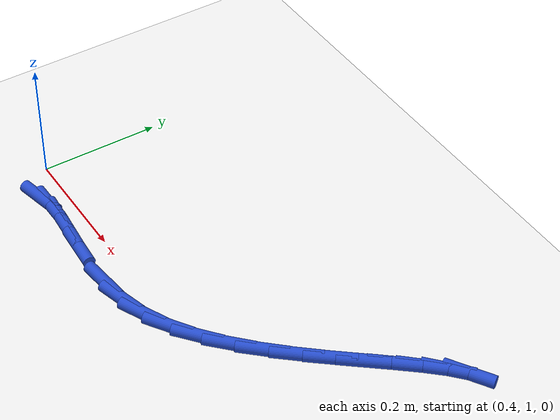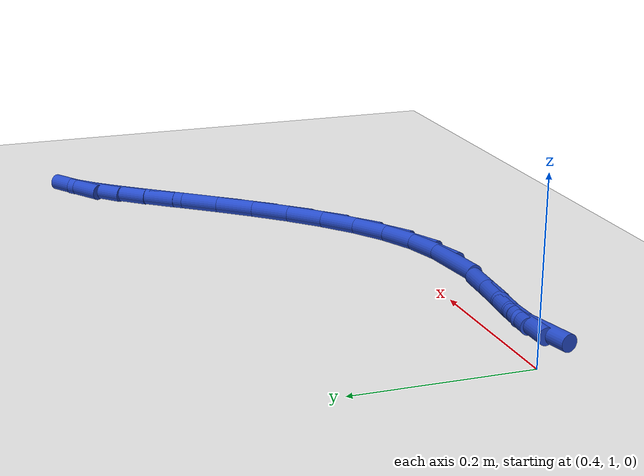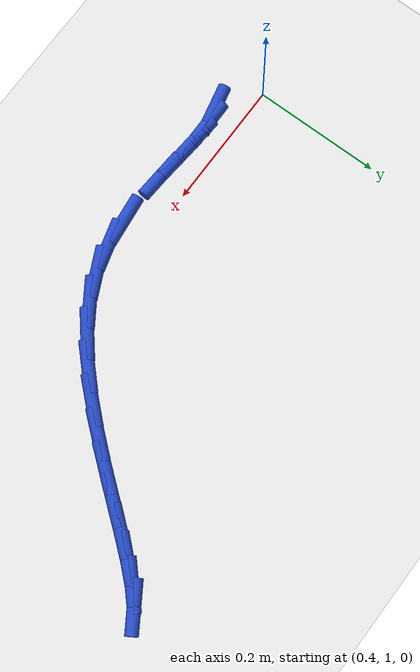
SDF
<sdf version="1.6">
 <world name="default">
  <model name="ground_plane">
   <static>1</static>
   <link name="link">
    <collision name="collision">
     <geometry><plane><normal>0 0 1</normal><size>100 100</size></plane></geometry>
     <surface><friction><ode><mu>100</mu><mu2>50</mu2></ode></friction></surface>
    </collision>
    <visual name="visual">
     <cast_shadows>0</cast_shadows>
     <geometry><plane><normal>0 0 1</normal><size>100 100</size></plane></geometry>
     <material>
      <script><uri>file://media/materials/scripts/gazebo.material</uri><name>Gazebo/WhiteGlow</name></script>
     </material>
    </visual>
   </link>
  </model>
  <model name="line">
   <link name="link_34">
    <pose>0.4666322199821111 0.9579388407464322 0.01 0 1.57 0.21961172141788254</pose>
    <collision name="collision">
     <geometry><cylinder><radius>0.01</radius><length>0.08</length></cylinder></geometry>
    </collision>
    <visual name="visual">
     <material>
      <script><name>Gazebo/Blue</name><uri>file://media/materials/scripts/gazebo.material</uri></script>
     </material>
     <geometry><cylinder><radius>0.01</radius><length>0.08</length></cylinder></geometry>
    </visual>
   </link>
   <link name="link_35">
    <pose>0.49033659723340095 0.9632299365643225 0.01 0 1.57 0.010225169959654248</pose>
    <collision name="collision">
     <geometry><cylinder><radius>0.01</radius><length>0.08</length></cylinder></geometry>
    </collision>
    <visual name="visual">
     <material>
      <script><name>Gazebo/Blue</name><uri>file://media/materials/scripts/gazebo.material</uri></script>
     </material>
     <geometry><cylinder><radius>0.01</radius><length>0.08</length></cylinder></geometry>
    </visual>
   </link>
   <link name="link_36">
    <pose>0.520755812561147 0.963540989051768 0.01 0 1.57 -0.07489083612325771</pose>
    <collision name="collision">
     <geometry><cylinder><radius>0.01</radius><length>0.08</length></cylinder></geometry>
    </collision>
    <visual name="visual">
     <material>
      <script><name>Gazebo/Blue</name><uri>file://media/materials/scripts/gazebo.material</uri></script>
     </material>
     <geometry><cylinder><radius>0.01</radius><length>0.08</length></cylinder></geometry>
    </visual>
   </link>
   <link name="link_37">
    <pose>0.5565872729485545 0.9608525129142669 0.01 0 1.57 -0.09255867676396555</pose>
    <collision name="collision">
     <geometry><cylinder><radius>0.01</radius><length>0.08</length></cylinder></geometry>
    </collision>
    <visual name="visual">
     <material>
      <script><name>Gazebo/Blue</name><uri>file://media/materials/scripts/gazebo.material</uri></script>
     </material>
     <geometry><cylinder><radius>0.01</radius><length>0.08</length></cylinder></geometry>
    </visual>
   </link>
   <link name="link_38">
    <pose>0.5965283853788292 0.9571450228573182 0.01 0 1.57 -0.06414827956842307</pose>
    <collision name="collision">
     <geometry><cylinder><radius>0.01</radius><length>0.08</length></cylinder></geometry>
    </collision>
    <visual name="visual">
     <material>
      <script><name>Gazebo/Blue</name><uri>file://media/materials/scripts/gazebo.material</uri></script>
     </material>
     <geometry><cylinder><radius>0.01</radius><length>0.08</length></cylinder></geometry>
    </visual>
   </link>
   <link name="link_40">
    <pose>0.6835291943008039 0.9545950598070734 0.01 0 1.57 0.11463661992983007</pose>
    <collision name="collision">
     <geometry><cylinder><radius>0.01</radius><length>0.08</length></cylinder></geometry>
    </collision>
    <visual name="visual">
     <material>
      <script><name>Gazebo/Blue</name><uri>file://media/materials/scripts/gazebo.material</uri></script>
     </material>
     <geometry><cylinder><radius>0.01</radius><length>0.08</length></cylinder></geometry>
    </visual>
   </link>
   <link name="link_41">
    <pose>0.7279837047589144 0.9597136162247737 0.01 0 1.57 0.26995627589608795</pose>
    <collision name="collision">
     <geometry><cylinder><radius>0.01</radius><length>0.08</length></cylinder></geometry>
    </collision>
    <visual name="visual">
     <material>
      <script><name>Gazebo/Blue</name><uri>file://media/materials/scripts/gazebo.material</uri></script>
     </material>
     <geometry><cylinder><radius>0.01</radius><length>0.08</length></cylinder></geometry>
    </visual>
   </link>
   <link name="link_42">
    <pose>0.7713462963367079 0.9717125250472792 0.01 0 1.57 0.4408642306535517</pose>
    <collision name="collision">
     <geometry><cylinder><radius>0.01</radius><length>0.08</length></cylinder></geometry>
    </collision>
    <visual name="visual">
     <material>
      <script><name>Gazebo/Blue</name><uri>file://media/materials/scripts/gazebo.material</uri></script>
     </material>
     <geometry><cylinder><radius>0.01</radius><length>0.08</length></cylinder></geometry>
    </visual>
   </link>
   <link name="link_43">
    <pose>0.8128158296628959 0.9912793740915068 0.01 0 1.57 0.5802218542452423</pose>
    <collision name="collision">
     <geometry><cylinder><radius>0.01</radius><length>0.08</length></cylinder></geometry>
    </collision>
    <visual name="visual">
     <material>
      <script><name>Gazebo/Blue</name><uri>file://media/materials/scripts/gazebo.material</uri></script>
     </material>
     <geometry><cylinder><radius>0.01</radius><length>0.08</length></cylinder></geometry>
    </visual>
   </link>
   <link name="link_44">
    <pose>0.8523350801038764 1.0171836728519135 0.01 0 1.57 0.6874824626980587</pose>
    <collision name="collision">
     <geometry><cylinder><radius>0.01</radius><length>0.08</length></cylinder></geometry>
    </collision>
    <visual name="visual">
     <material>
      <script><name>Gazebo/Blue</name><uri>file://media/materials/scripts/gazebo.material</uri></script>
     </material>
     <geometry><cylinder><radius>0.01</radius><length>0.08</length></cylinder></geometry>
    </visual>
   </link>
   <link name="link_45">
    <pose>0.8899085677124742 1.0480357309327468 0.01 0 1.57 0.7679516693271748</pose>
    <collision name="collision">
     <geometry><cylinder><radius>0.01</radius><length>0.08</length></cylinder></geometry>
    </collision>
    <visual name="visual">
     <material>
      <script><name>Gazebo/Blue</name><uri>file://media/materials/scripts/gazebo.material</uri></script>
     </material>
     <geometry><cylinder><radius>0.01</radius><length>0.08</length></cylinder></geometry>
    </visual>
   </link>
   <link name="link_46">
    <pose>0.9255408125415151 1.0824458579382545 0.01 0 1.57 0.8264000494082598</pose>
    <collision name="collision">
     <geometry><cylinder><radius>0.01</radius><length>0.08</length></cylinder></geometry>
    </collision>
    <visual name="visual">
     <material>
      <script><name>Gazebo/Blue</name><uri>file://media/materials/scripts/gazebo.material</uri></script>
     </material>
     <geometry><cylinder><radius>0.01</radius><length>0.08</length></cylinder></geometry>
    </visual>
   </link>
   <link name="link_47">
    <pose>0.9592363346438242 1.1190243634726846 0.01 0 1.57 0.8661514637370296</pose>
    <collision name="collision">
     <geometry><cylinder><radius>0.01</radius><length>0.08</length></cylinder></geometry>
    </collision>
    <visual name="visual">
     <material>
      <script><name>Gazebo/Blue</name><uri>file://media/materials/scripts/gazebo.material</uri></script>
     </material>
     <geometry><cylinder><radius>0.01</radius><length>0.08</length></cylinder></geometry>
    </visual>
   </link>
   <link name="link_48">
    <pose>0.9909996540722263 1.1563815571402838 0.01 0 1.57 0.8888182619212447</pose>
    <collision name="collision">
     <geometry><cylinder><radius>0.01</radius><length>0.08</length></cylinder></geometry>
    </collision>
    <visual name="visual">
     <material>
      <script><name>Gazebo/Blue</name><uri>file://media/materials/scripts/gazebo.material</uri></script>
     </material>
     <geometry><cylinder><radius>0.01</radius><length>0.08</length></cylinder></geometry>
    </visual>
   </link>
   <link name="link_49">
    <pose>1.0208352908795475 1.1931277485453007 0.01 0 1.57 0.8940216726257181</pose>
    <collision name="collision">
     <geometry><cylinder><radius>0.01</radius><length>0.08</length></cylinder></geometry>
    </collision>
    <visual name="visual">
     <material>
      <script><name>Gazebo/Blue</name><uri>file://media/materials/scripts/gazebo.material</uri></script>
     </material>
     <geometry><cylinder><radius>0.01</radius><length>0.08</length></cylinder></geometry>
    </visual>
   </link>
   <link name="link_50">
    <pose>1.048747765118613 1.2278732472919827 0.01 0 1.57 0.8786125514776213</pose>
    <collision name="collision">
     <geometry><cylinder><radius>0.01</radius><length>0.08</length></cylinder></geometry>
    </collision>
    <visual name="visual">
     <material>
      <script><name>Gazebo/Blue</name><uri>file://media/materials/scripts/gazebo.material</uri></script>
     </material>
     <geometry><cylinder><radius>0.01</radius><length>0.08</length></cylinder></geometry>
    </visual>
   </link>
   <link name="link_51">
    <pose>1.0747415968422473 1.2592283629845769 0.01 0 1.57 0.8346199513677026</pose>
    <collision name="collision">
     <geometry><cylinder><radius>0.01</radius><length>0.08</length></cylinder></geometry>
    </collision>
    <visual name="visual">
     <material>
      <script><name>Gazebo/Blue</name><uri>file://media/materials/scripts/gazebo.material</uri></script>
     </material>
     <geometry><cylinder><radius>0.01</radius><length>0.08</length></cylinder></geometry>
    </visual>
   </link>
   <link name="link_52">
    <pose>1.0988213061032766 1.2858034052273317 0.01 0 1.57 0.7439700312572795</pose>
    <collision name="collision">
     <geometry><cylinder><radius>0.01</radius><length>0.08</length></cylinder></geometry>
    </collision>
    <visual name="visual">
     <material>
      <script><name>Gazebo/Blue</name><uri>file://media/materials/scripts/gazebo.material</uri></script>
     </material>
     <geometry><cylinder><radius>0.01</radius><length>0.08</length></cylinder></geometry>
    </visual>
   </link>
   <link name="link_53">
    <pose>1.1209914129545258 1.3062086836244946 0.01 0 1.57 0.5649675752953512</pose>
    <collision name="collision">
     <geometry><cylinder><radius>0.01</radius><length>0.08</length></cylinder></geometry>
    </collision>
    <visual name="visual">
     <material>
      <script><name>Gazebo/Blue</name><uri>file://media/materials/scripts/gazebo.material</uri></script>
     </material>
     <geometry><cylinder><radius>0.01</radius><length>0.08</length></cylinder></geometry>
    </visual>
   </link>
  </model>
 </world>
</sdf>
